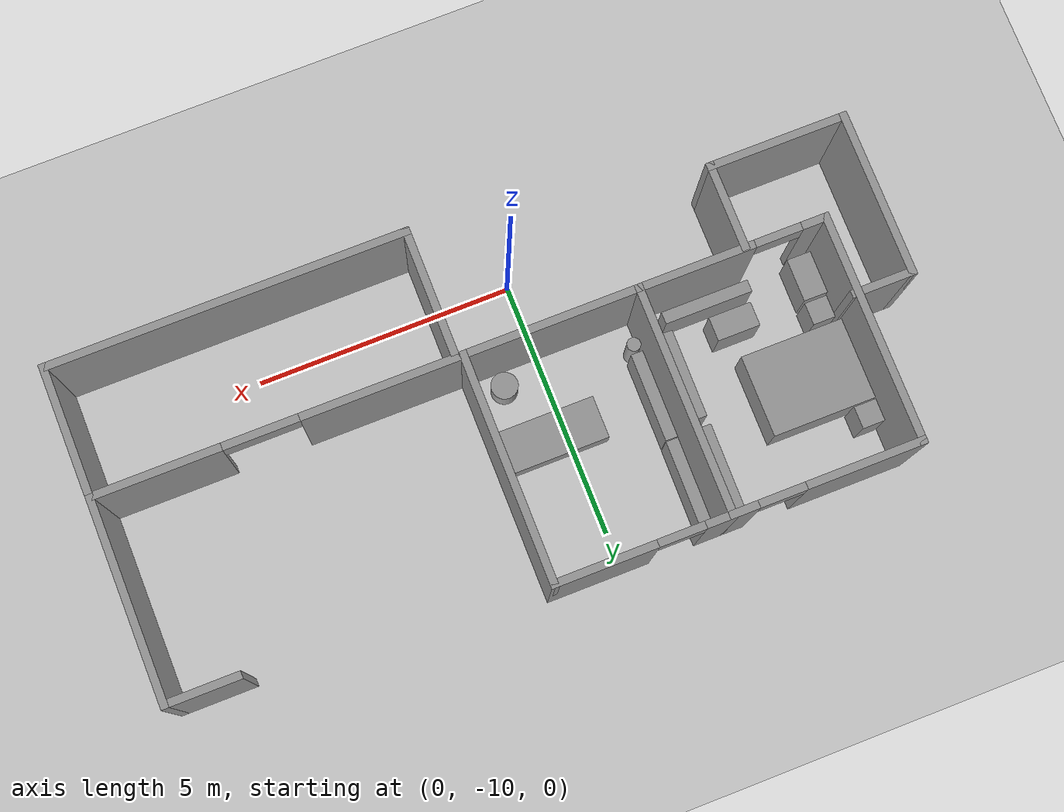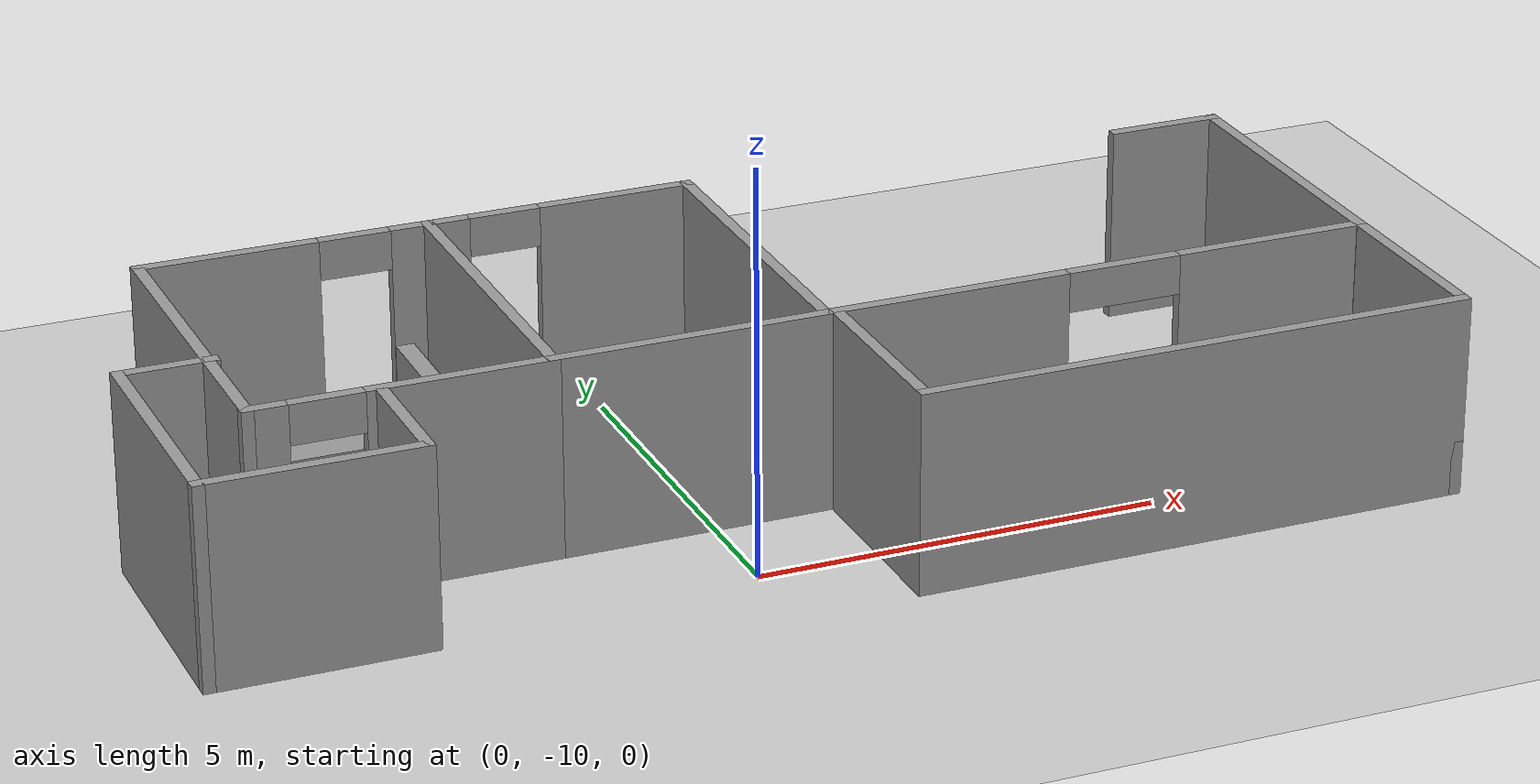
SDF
<sdf version="1.9">
 <world name="default">
  <model name="ground_plane">
   <static>true</static>
   <link name="link">
    <collision name="collision">
     <geometry><plane><normal>0 0 1</normal><size>100 100</size></plane></geometry>
     <surface><friction><ode><mu>100</mu><mu2>50</mu2></ode></friction></surface>
    </collision>
    <visual name="visual">
     <cast_shadows>false</cast_shadows>
     <geometry><plane><normal>0 0 1</normal><size>100 100</size></plane></geometry>
     <material>
      <script><uri>file://media/materials/scripts/gazebo.material</uri><name>Gazebo/Grey</name></script>
     </material>
    </visual>
   </link>
  </model>
  <model name="cma_quartos">
   <pose>-2.58169 -7.2645600000000004 0 0 0 0</pose>
   <link name="Wall_0">
    <collision name="Wall_0_Collision">
     <geometry><box><size>4.5 0.14999999999999999 2.5</size></box></geometry>
     <pose>0 0 1.25 0 0 0</pose>
    </collision>
    <visual name="Wall_0_Visual">
     <pose>0 0 1.25 0 0 0</pose>
     <geometry><box><size>4.5 0.14999999999999999 2.5</size></box></geometry>
     <material>
      <script><uri>file://media/materials/scripts/gazebo.material</uri><name>Gazebo/Grey</name></script>
      <ambient>1 1 1 1</ambient>
     </material>
    </visual>
    <pose>0.64500000000000002 0.81000000000000005 0 0 0 -1.5708</pose>
   </link>
   <link name="Wall_1">
    <pose>-1.155 -1.365 0 0 0 3.1415899999999999</pose>
    <visual name="Wall_1_Visual_0">
     <pose>-0.72250000000000003 0 1.25 0 0 0</pose>
     <geometry><box><size>2.3050000000000002 0.14999999999999999 2.5</size></box></geometry>
     <material>
      <script><uri>file://media/materials/scripts/gazebo.material</uri><name>Gazebo/Grey</name></script>
      <ambient>1 1 1 1</ambient>
     </material>
    </visual>
    <collision name="Wall_1_Collision_0">
     <geometry><box><size>2.3050000000000002 0.14999999999999999 2.5</size></box></geometry>
     <pose>-0.72250000000000003 0 1.25 0 0 0</pose>
    </collision>
    <visual name="Wall_1_Visual_1">
     <pose>1.6025 0 1.25 0 0 0</pose>
     <geometry><box><size>0.54500000000000004 0.14999999999999999 2.5</size></box></geometry>
     <material>
      <script><uri>file://media/materials/scripts/gazebo.material</uri><name>Gazebo/Grey</name></script>
      <ambient>1 1 1 1</ambient>
     </material>
    </visual>
    <collision name="Wall_1_Collision_1">
     <geometry><box><size>0.54500000000000004 0.14999999999999999 2.5</size></box></geometry>
     <pose>1.6025 0 1.25 0 0 0</pose>
    </collision>
    <visual name="Wall_1_Visual_2">
     <pose>0.88 0 2.25 0 0 0</pose>
     <geometry><box><size>0.90000000000000002 0.14999999999999999 0.5</size></box></geometry>
     <material>
      <script><uri>file://media/materials/scripts/gazebo.material</uri><name>Gazebo/Grey</name></script>
      <ambient>1 1 1 1</ambient>
     </material>
    </visual>
    <collision name="Wall_1_Collision_2">
     <geometry><box><size>0.90000000000000002 0.14999999999999999 0.5</size></box></geometry>
     <pose>0.88 0 2.25 0 0 0</pose>
    </collision>
   </link>
   <link name="Wall_10">
    <collision name="Wall_10_Collision">
     <geometry><box><size>1.75 0.14999999999999999 2.5</size></box></geometry>
     <pose>0 0 1.25 0 0 0</pose>
    </collision>
    <visual name="Wall_10_Visual">
     <pose>0 0 1.25 0 0 0</pose>
     <geometry><box><size>1.75 0.14999999999999999 2.5</size></box></geometry>
     <material>
      <script><uri>file://media/materials/scripts/gazebo.material</uri><name>Gazebo/Grey</name></script>
      <ambient>1 1 1 1</ambient>
     </material>
    </visual>
    <pose>-1.395 -2.1850000000000001 0 0 0 -1.5708</pose>
   </link>
   <link name="Wall_11">
    <collision name="Wall_11_Collision">
     <geometry><box><size>2.75 0.14999999999999999 2.5</size></box></geometry>
     <pose>0 0 1.25 0 0 0</pose>
    </collision>
    <visual name="Wall_11_Visual">
     <pose>0 0 1.25 0 0 0</pose>
     <geometry><box><size>2.75 0.14999999999999999 2.5</size></box></geometry>
     <material>
      <script><uri>file://media/materials/scripts/gazebo.material</uri><name>Gazebo/Grey</name></script>
      <ambient>1 1 1 1</ambient>
     </material>
    </visual>
    <pose>-2.6949999999999998 -2.9849999999999999 0 0 0 3.1415899999999999</pose>
   </link>
   <link name="Wall_12">
    <collision name="Wall_12_Collision">
     <geometry><box><size>3.25 0.14999999999999999 2.5</size></box></geometry>
     <pose>0 0 1.25 0 0 0</pose>
    </collision>
    <visual name="Wall_12_Visual">
     <pose>0 0 1.25 0 0 0</pose>
     <geometry><box><size>3.25 0.14999999999999999 2.5</size></box></geometry>
     <material>
      <script><uri>file://media/materials/scripts/gazebo.material</uri><name>Gazebo/Grey</name></script>
      <ambient>1 1 1 1</ambient>
     </material>
    </visual>
    <pose>-3.9950000000000001 -1.4350000000000001 0 0 0 1.5708</pose>
   </link>
   <link name="Wall_13">
    <collision name="Wall_13_Collision">
     <geometry><box><size>1.25 0.14999999999999999 2.5</size></box></geometry>
     <pose>0 0 1.25 0 0 0</pose>
    </collision>
    <visual name="Wall_13_Visual">
     <pose>0 0 1.25 0 0 0</pose>
     <geometry><box><size>1.25 0.14999999999999999 2.5</size></box></geometry>
     <material>
      <script><uri>file://media/materials/scripts/gazebo.material</uri><name>Gazebo/Grey</name></script>
      <ambient>1 1 1 1</ambient>
     </material>
    </visual>
    <pose>-3.4449999999999998 0.115 0 0 0 0</pose>
   </link>
   <link name="Wall_2">
    <collision name="Wall_2_Collision">
     <geometry><box><size>4.5 0.14999999999999999 2.5</size></box></geometry>
     <pose>0 0 1.25 0 0 0</pose>
    </collision>
    <visual name="Wall_2_Visual">
     <pose>0 0 1.25 0 0 0</pose>
     <geometry><box><size>4.5 0.14999999999999999 2.5</size></box></geometry>
     <material>
      <script><uri>file://media/materials/scripts/gazebo.material</uri><name>Gazebo/Grey</name></script>
      <ambient>1 1 1 1</ambient>
     </material>
    </visual>
    <pose>-2.9550000000000001 0.81000000000000005 0 0 0 1.5708</pose>
   </link>
   <link name="Wall_3">
    <pose>-1.155 2.9849999999999999 0 0 0 0</pose>
    <visual name="Wall_3_Visual_0">
     <pose>-0.73250000000000004 0 1.25 0 0 0</pose>
     <geometry><box><size>2.2850000000000001 0.14999999999999999 2.5</size></box></geometry>
     <material>
      <script><uri>file://media/materials/scripts/gazebo.material</uri><name>Gazebo/Grey</name></script>
      <ambient>1 1 1 1</ambient>
     </material>
    </visual>
    <collision name="Wall_3_Collision_0">
     <geometry><box><size>2.2850000000000001 0.14999999999999999 2.5</size></box></geometry>
     <pose>-0.73250000000000004 0 1.25 0 0 0</pose>
    </collision>
    <visual name="Wall_3_Visual_1">
     <pose>1.5925 0 1.25 0 0 0</pose>
     <geometry><box><size>0.56499999999999995 0.14999999999999999 2.5</size></box></geometry>
     <material>
      <script><uri>file://media/materials/scripts/gazebo.material</uri><name>Gazebo/Grey</name></script>
      <ambient>1 1 1 1</ambient>
     </material>
    </visual>
    <collision name="Wall_3_Collision_1">
     <geometry><box><size>0.56499999999999995 0.14999999999999999 2.5</size></box></geometry>
     <pose>1.5925 0 1.25 0 0 0</pose>
    </collision>
    <visual name="Wall_3_Visual_2">
     <pose>0.85999999999999999 0 2.25 0 0 0</pose>
     <geometry><box><size>0.90000000000000002 0.14999999999999999 0.5</size></box></geometry>
     <material>
      <script><uri>file://media/materials/scripts/gazebo.material</uri><name>Gazebo/Grey</name></script>
      <ambient>1 1 1 1</ambient>
     </material>
    </visual>
    <collision name="Wall_3_Collision_2">
     <geometry><box><size>0.90000000000000002 0.14999999999999999 0.5</size></box></geometry>
     <pose>0.85999999999999999 0 2.25 0 0 0</pose>
    </collision>
   </link>
   <link name="Wall_6">
    <pose>2.3199999999999998 2.9849999999999999 0 0 0 0</pose>
    <visual name="Wall_6_Visual_0">
     <pose>-1.4575 0 1.25 0 0 0</pose>
     <geometry><box><size>0.58499999999999996 0.14999999999999999 2.5</size></box></geometry>
     <material>
      <script><uri>file://media/materials/scripts/gazebo.material</uri><name>Gazebo/Grey</name></script>
      <ambient>1 1 1 1</ambient>
     </material>
    </visual>
    <collision name="Wall_6_Collision_0">
     <geometry><box><size>0.58499999999999996 0.14999999999999999 2.5</size></box></geometry>
     <pose>-1.4575 0 1.25 0 0 0</pose>
    </collision>
    <visual name="Wall_6_Visual_1">
     <pose>0.74250000000000005 0 1.25 0 0 0</pose>
     <geometry><box><size>2.0150000000000001 0.14999999999999999 2.5</size></box></geometry>
     <material>
      <script><uri>file://media/materials/scripts/gazebo.material</uri><name>Gazebo/Grey</name></script>
      <ambient>1 1 1 1</ambient>
     </material>
    </visual>
    <collision name="Wall_6_Collision_1">
     <geometry><box><size>2.0150000000000001 0.14999999999999999 2.5</size></box></geometry>
     <pose>0.74250000000000005 0 1.25 0 0 0</pose>
    </collision>
    <visual name="Wall_6_Visual_2">
     <pose>-0.71499999999999997 0 2.25 0 0 0</pose>
     <geometry><box><size>0.90000000000000002 0.14999999999999999 0.5</size></box></geometry>
     <material>
      <script><uri>file://media/materials/scripts/gazebo.material</uri><name>Gazebo/Grey</name></script>
      <ambient>1 1 1 1</ambient>
     </material>
    </visual>
    <collision name="Wall_6_Collision_2">
     <geometry><box><size>0.90000000000000002 0.14999999999999999 0.5</size></box></geometry>
     <pose>-0.71499999999999997 0 2.25 0 0 0</pose>
    </collision>
   </link>
   <link name="Wall_7">
    <collision name="Wall_7_Collision">
     <geometry><box><size>4.5 0.14999999999999999 2.5</size></box></geometry>
     <pose>0 0 1.25 0 0 0</pose>
    </collision>
    <visual name="Wall_7_Visual">
     <pose>0 0 1.25 0 0 0</pose>
     <geometry><box><size>4.5 0.14999999999999999 2.5</size></box></geometry>
     <material>
      <script><uri>file://media/materials/scripts/gazebo.material</uri><name>Gazebo/Grey</name></script>
      <ambient>1 1 1 1</ambient>
     </material>
    </visual>
    <pose>3.9950000000000001 0.81000000000000005 0 0 0 -1.5708</pose>
   </link>
   <link name="Wall_8">
    <collision name="Wall_8_Collision">
     <geometry><box><size>3.5 0.14999999999999999 2.5</size></box></geometry>
     <pose>0 0 1.25 0 0 0</pose>
    </collision>
    <visual name="Wall_8_Visual">
     <pose>0 0 1.25 0 0 0</pose>
     <geometry><box><size>3.5 0.14999999999999999 2.5</size></box></geometry>
     <material>
      <script><uri>file://media/materials/scripts/gazebo.material</uri><name>Gazebo/Grey</name></script>
      <ambient>1 1 1 1</ambient>
     </material>
    </visual>
    <pose>2.3199999999999998 -1.365 0 0 0 3.1415899999999999</pose>
   </link>
   <static>true</static>
  </model>
  <model name="cma_parede_L">
   <pose>4.97628 -6.6999199999999997 0 0 0 0</pose>
   <link name="Wall_0">
    <pose>0 -1.925 0 0 0 0</pose>
    <visual name="Wall_0_Visual_0">
     <pose>-1.9850000000000001 0 1.25 0 0 0</pose>
     <geometry><box><size>3.0299999999999998 0.14999999999999999 2.5</size></box></geometry>
     <material>
      <script><uri>file://media/materials/scripts/gazebo.material</uri><name>Gazebo/Grey</name></script>
      <ambient>1 1 1 1</ambient>
     </material>
    </visual>
    <collision name="Wall_0_Collision_0">
     <geometry><box><size>3.0299999999999998 0.14999999999999999 2.5</size></box></geometry>
     <pose>-1.9850000000000001 0 1.25 0 0 0</pose>
    </collision>
    <visual name="Wall_0_Visual_1">
     <pose>2.2400000000000002 0 1.25 0 0 0</pose>
     <geometry><box><size>2.52 0.14999999999999999 2.5</size></box></geometry>
     <material>
      <script><uri>file://media/materials/scripts/gazebo.material</uri><name>Gazebo/Grey</name></script>
      <ambient>1 1 1 1</ambient>
     </material>
    </visual>
    <collision name="Wall_0_Collision_1">
     <geometry><box><size>2.52 0.14999999999999999 2.5</size></box></geometry>
     <pose>2.2400000000000002 0 1.25 0 0 0</pose>
    </collision>
    <visual name="Wall_0_Visual_2">
     <pose>0.255 0 2.25 0 0 0</pose>
     <geometry><box><size>1.45 0.14999999999999999 0.5</size></box></geometry>
     <material>
      <script><uri>file://media/materials/scripts/gazebo.material</uri><name>Gazebo/Grey</name></script>
      <ambient>1 1 1 1</ambient>
     </material>
    </visual>
    <collision name="Wall_0_Collision_2">
     <geometry><box><size>1.45 0.14999999999999999 0.5</size></box></geometry>
     <pose>0.255 0 2.25 0 0 0</pose>
    </collision>
   </link>
   <link name="Wall_1">
    <collision name="Wall_1_Collision">
     <geometry><box><size>4 0.14999999999999999 2.5</size></box></geometry>
     <pose>0 0 1.25 0 0 0</pose>
    </collision>
    <visual name="Wall_1_Visual">
     <pose>0 0 1.25 0 0 0</pose>
     <geometry><box><size>4 0.14999999999999999 2.5</size></box></geometry>
     <material>
      <script><uri>file://media/materials/scripts/gazebo.material</uri><name>Gazebo/Grey</name></script>
      <ambient>1 1 1 1</ambient>
     </material>
    </visual>
    <pose>3.4249999999999998 0 0 0 0 1.5708</pose>
   </link>
   <link name="Wall_2">
    <collision name="Wall_2_Collision">
     <geometry><box><size>1.5 0.14999999999999999 2.5</size></box></geometry>
     <pose>0 0 1.25 0 0 0</pose>
    </collision>
    <visual name="Wall_2_Visual">
     <pose>0 0 1.25 0 0 0</pose>
     <geometry><box><size>1.5 0.14999999999999999 2.5</size></box></geometry>
     <material>
      <script><uri>file://media/materials/scripts/gazebo.material</uri><name>Gazebo/Grey</name></script>
      <ambient>1 1 1 1</ambient>
     </material>
    </visual>
    <pose>2.75 1.925 0 0 0 3.1415899999999999</pose>
   </link>
   <static>true</static>
  </model>
  <model name="cma_U">
   <pose>4.9789500000000002 -9.92408 0 0 0 0</pose>
   <link name="Wall_16">
    <collision name="Wall_16_Collision">
     <geometry><box><size>2.5 0.14999999999999999 2.5</size></box></geometry>
     <pose>0 0 1.25 0 0 0</pose>
    </collision>
    <visual name="Wall_16_Visual">
     <pose>0 0 1.25 0 0 0</pose>
     <geometry><box><size>2.5 0.14999999999999999 2.5</size></box></geometry>
     <material>
      <script><uri>file://media/materials/scripts/gazebo.material</uri><name>Gazebo/Grey</name></script>
      <ambient>1 1 1 1</ambient>
     </material>
    </visual>
    <pose>-3.4249999999999998 0 0 0 0 -1.5708</pose>
   </link>
   <link name="Wall_17">
    <collision name="Wall_17_Collision">
     <geometry><box><size>7 0.14999999999999999 2.5</size></box></geometry>
     <pose>0 0 1.25 0 0 0</pose>
    </collision>
    <visual name="Wall_17_Visual">
     <pose>0 0 1.25 0 0 0</pose>
     <geometry><box><size>7 0.14999999999999999 2.5</size></box></geometry>
     <material>
      <script><uri>file://media/materials/scripts/gazebo.material</uri><name>Gazebo/Grey</name></script>
      <ambient>1 1 1 1</ambient>
     </material>
    </visual>
    <pose>0 -1.175 0 0 0 0</pose>
   </link>
   <link name="Wall_18">
    <collision name="Wall_18_Collision">
     <geometry><box><size>2.5 0.14999999999999999 2.5</size></box></geometry>
     <pose>0 0 1.25 0 0 0</pose>
    </collision>
    <visual name="Wall_18_Visual">
     <pose>0 0 1.25 0 0 0</pose>
     <geometry><box><size>2.5 0.14999999999999999 2.5</size></box></geometry>
     <material>
      <script><uri>file://media/materials/scripts/gazebo.material</uri><name>Gazebo/Grey</name></script>
      <ambient>1 1 1 1</ambient>
     </material>
    </visual>
    <pose>3.4249999999999998 0 0 0 0 1.5708</pose>
   </link>
   <static>true</static>
  </model>
  <model name="cma_cama_c">
   <link name="link_0">
    <pose>5.0000000000000004e-06 -3.9999999999999998e-06 0 0 0 0</pose>
    <inertial>
     <mass>3.1835800000000001</mass>
     <inertia>
      <ixx>0.93486199999999997</ixx>
      <ixy>0</ixy>
      <ixz>0</ixz>
      <iyy>1.3306899999999999</iyy>
      <iyz>0</iyz>
      <izz>1.7349600000000001</izz>
     </inertia>
    </inertial>
    <visual name="visual">
     <geometry><box><size>2.0039400000000001 1.58866 1</size></box></geometry>
     <material>
      <lighting>true</lighting>
      <script><uri>file://media/materials/scripts/gazebo.material</uri><name>Gazebo/Grey</name></script>
      <ambient>0.300000012 0.300000012 0.300000012 1</ambient>
      <diffuse>0.699999988 0.699999988 0.699999988 1</diffuse>
      <specular>0.00999999978 0.00999999978 0.00999999978 1</specular>
      <emissive>0 0 0 1</emissive>
     </material>
    </visual>
    <collision name="collision">
     <geometry><box><size>2.0039400000000001 1.58866 1</size></box></geometry>
     <surface>
      <friction>
       <ode><mu>1</mu><mu2>1</mu2><fdir1>0 0 0</fdir1><slip1>0</slip1><slip2>0</slip2></ode>
       <torsional>
        <coefficient>1</coefficient>
        <patch_radius>0</patch_radius>
        <surface_radius>0</surface_radius>
        <use_patch_radius>true</use_patch_radius>
        <ode><slip>0</slip></ode>
       </torsional>
      </friction>
      <bounce><restitution_coefficient>0</restitution_coefficient><threshold>1000000</threshold></bounce>
      <contact>
       <collide_without_contact>false</collide_without_contact>
       <collide_without_contact_bitmask>1</collide_without_contact_bitmask>
       <collide_bitmask>1</collide_bitmask>
       <ode>
        <soft_cfm>0</soft_cfm>
        <soft_erp>0.20000000000000001</soft_erp>
        <kp>10000000000000</kp>
        <kd>1</kd>
        <max_vel>0.01</max_vel>
        <min_depth>0</min_depth>
       </ode>
       <bullet>
        <split_impulse>true</split_impulse>
        <split_impulse_penetration_threshold>-0.01</split_impulse_penetration_threshold>
        <soft_cfm>0</soft_cfm>
        <soft_erp>0.20000000000000001</soft_erp>
        <kp>10000000000000</kp>
        <kd>1</kd>
       </bullet>
      </contact>
     </surface>
    </collision>
   </link>
   <static>false</static>
   <pose>-4.43933 -6.2481600000000004 0.5 0 0 0</pose>
  </model>
  <model name="cma_gaveteiro_pequeno_1">
   <link name="link_0">
    <pose>0.25617400000000001 1.2505500000000001 0.5 0 0 0</pose>
    <inertial>
     <mass>0.18718599999999999</mass>
     <inertia>
      <ixx>0.018509999999999999</ixx>
      <ixy>0</ixy>
      <ixz>0</ixz>
      <iyy>0.018527600000000002</iyy>
      <iyz>0</iyz>
      <izz>0.00583981</izz>
     </inertia>
    </inertial>
    <visual name="visual">
     <geometry><box><size>0.43331700000000001 0.432002 1</size></box></geometry>
     <material>
      <lighting>true</lighting>
      <script><uri>file://media/materials/scripts/gazebo.material</uri><name>Gazebo/Grey</name></script>
      <ambient>0.300000012 0.300000012 0.300000012 1</ambient>
      <diffuse>0.699999988 0.699999988 0.699999988 1</diffuse>
      <specular>0.00999999978 0.00999999978 0.00999999978 1</specular>
      <emissive>0 0 0 1</emissive>
     </material>
    </visual>
    <collision name="collision">
     <geometry><box><size>0.43331700000000001 0.432002 1</size></box></geometry>
     <surface>
      <friction>
       <ode><mu>1</mu><mu2>1</mu2><fdir1>0 0 0</fdir1><slip1>0</slip1><slip2>0</slip2></ode>
       <torsional>
        <coefficient>1</coefficient>
        <patch_radius>0</patch_radius>
        <surface_radius>0</surface_radius>
        <use_patch_radius>true</use_patch_radius>
        <ode><slip>0</slip></ode>
       </torsional>
      </friction>
      <bounce><restitution_coefficient>0</restitution_coefficient><threshold>1000000</threshold></bounce>
      <contact>
       <collide_without_contact>false</collide_without_contact>
       <collide_without_contact_bitmask>1</collide_without_contact_bitmask>
       <collide_bitmask>1</collide_bitmask>
       <ode>
        <soft_cfm>0</soft_cfm>
        <soft_erp>0.20000000000000001</soft_erp>
        <kp>10000000000000</kp>
        <kd>1</kd>
        <max_vel>0.01</max_vel>
        <min_depth>0</min_depth>
       </ode>
       <bullet>
        <split_impulse>true</split_impulse>
        <split_impulse_penetration_threshold>-0.01</split_impulse_penetration_threshold>
        <soft_cfm>0</soft_cfm>
        <soft_erp>0.20000000000000001</soft_erp>
        <kp>10000000000000</kp>
        <kd>1</kd>
       </bullet>
      </contact>
     </surface>
    </collision>
   </link>
   <static>false</static>
   <pose>-5.4747500000000002 -6.4632500000000004 -6.9999999999999999e-06 6.999999999999999e-06 4.0389678347315804e-28 -9.9999999999999995e-07</pose>
  </model>
  <model name="cma_armario_s_0">
   <link name="link_1">
    <pose>-1.9999999999999999e-06 -3.0000000000000001e-06 0 0 0 0</pose>
    <inertial>
     <mass>0.39015899999999998</mass>
     <inertia>
      <ixx>0.039647000000000002</ixx>
      <ixy>0</ixy>
      <ixz>0</ixz>
      <iyy>0.055070800000000003</iyy>
      <iyz>0</iyz>
      <izz>0.029691200000000001</izz>
     </inertia>
    </inertial>
    <visual name="visual">
     <geometry><box><size>0.83294199999999996 0.46839700000000001 1</size></box></geometry>
     <material>
      <lighting>true</lighting>
      <script><uri>file://media/materials/scripts/gazebo.material</uri><name>Gazebo/Grey</name></script>
      <ambient>0.300000012 0.300000012 0.300000012 1</ambient>
      <diffuse>0.699999988 0.699999988 0.699999988 1</diffuse>
      <specular>0.00999999978 0.00999999978 0.00999999978 1</specular>
      <emissive>0 0 0 1</emissive>
     </material>
    </visual>
    <collision name="collision">
     <geometry><box><size>0.83294199999999996 0.46839700000000001 1</size></box></geometry>
     <surface>
      <friction>
       <ode><mu>1</mu><mu2>1</mu2><fdir1>0 0 0</fdir1><slip1>0</slip1><slip2>0</slip2></ode>
       <torsional>
        <coefficient>1</coefficient>
        <patch_radius>0</patch_radius>
        <surface_radius>0</surface_radius>
        <use_patch_radius>true</use_patch_radius>
        <ode><slip>0</slip></ode>
       </torsional>
      </friction>
      <bounce><restitution_coefficient>0</restitution_coefficient><threshold>1000000</threshold></bounce>
      <contact>
       <collide_without_contact>false</collide_without_contact>
       <collide_without_contact_bitmask>1</collide_without_contact_bitmask>
       <collide_bitmask>1</collide_bitmask>
       <ode>
        <soft_cfm>0</soft_cfm>
        <soft_erp>0.20000000000000001</soft_erp>
        <kp>10000000000000</kp>
        <kd>1</kd>
        <max_vel>0.01</max_vel>
        <min_depth>0</min_depth>
       </ode>
       <bullet>
        <split_impulse>true</split_impulse>
        <split_impulse_penetration_threshold>-0.01</split_impulse_penetration_threshold>
        <soft_cfm>0</soft_cfm>
        <soft_erp>0.20000000000000001</soft_erp>
        <kp>10000000000000</kp>
        <kd>1</kd>
       </bullet>
      </contact>
     </surface>
    </collision>
   </link>
   <static>false</static>
   <pose>-5.1683599999999998 -8.0155499999999993 0.49999900000000003 1.9999999999999999e-06 4.0000000000000007e-06 -1.57518</pose>
  </model>
  <model name="cma_gaveteiro_pequeno_2">
   <link name="link_0">
    <pose>0.25617400000000001 1.2505500000000001 0.5 0 0 0</pose>
    <inertial>
     <mass>0.18718599999999999</mass>
     <inertia>
      <ixx>0.018509999999999999</ixx>
      <ixy>0</ixy>
      <ixz>0</ixz>
      <iyy>0.018527600000000002</iyy>
      <iyz>0</iyz>
      <izz>0.00583981</izz>
     </inertia>
    </inertial>
    <visual name="visual">
     <geometry><box><size>0.43331700000000001 0.432002 1</size></box></geometry>
     <material>
      <lighting>true</lighting>
      <script><uri>file://media/materials/scripts/gazebo.material</uri><name>Gazebo/Grey</name></script>
      <ambient>0.300000012 0.300000012 0.300000012 1</ambient>
      <diffuse>0.699999988 0.699999988 0.699999988 1</diffuse>
      <specular>0.00999999978 0.00999999978 0.00999999978 1</specular>
      <emissive>0 0 0 1</emissive>
     </material>
    </visual>
    <collision name="collision">
     <geometry><box><size>0.43331700000000001 0.432002 1</size></box></geometry>
     <surface>
      <friction>
       <ode><mu>1</mu><mu2>1</mu2><fdir1>0 0 0</fdir1><slip1>0</slip1><slip2>0</slip2></ode>
       <torsional>
        <coefficient>1</coefficient>
        <patch_radius>0</patch_radius>
        <surface_radius>0</surface_radius>
        <use_patch_radius>true</use_patch_radius>
        <ode><slip>0</slip></ode>
       </torsional>
      </friction>
      <bounce><restitution_coefficient>0</restitution_coefficient><threshold>1000000</threshold></bounce>
      <contact>
       <collide_without_contact>false</collide_without_contact>
       <collide_without_contact_bitmask>1</collide_without_contact_bitmask>
       <collide_bitmask>1</collide_bitmask>
       <ode>
        <soft_cfm>0</soft_cfm>
        <soft_erp>0.20000000000000001</soft_erp>
        <kp>10000000000000</kp>
        <kd>1</kd>
        <max_vel>0.01</max_vel>
        <min_depth>0</min_depth>
       </ode>
       <bullet>
        <split_impulse>true</split_impulse>
        <split_impulse_penetration_threshold>-0.01</split_impulse_penetration_threshold>
        <soft_cfm>0</soft_cfm>
        <soft_erp>0.20000000000000001</soft_erp>
        <kp>10000000000000</kp>
        <kd>1</kd>
       </bullet>
      </contact>
     </surface>
    </collision>
   </link>
   <static>false</static>
   <pose>-5.3915899999999999 -8.5855300000000003 -6.9999999999999999e-06 6.999999999999999e-06 4.0389678347315804e-28 -9.9999999999999995e-07</pose>
  </model>
  <model name="cma_armario_s_1">
   <link name="link_1">
    <pose>-1.9999999999999999e-06 -3.0000000000000001e-06 0 0 0 0</pose>
    <inertial>
     <mass>0.39015899999999998</mass>
     <inertia>
      <ixx>0.039647000000000002</ixx>
      <ixy>0</ixy>
      <ixz>0</ixz>
      <iyy>0.055070800000000003</iyy>
      <iyz>0</iyz>
      <izz>0.029691200000000001</izz>
     </inertia>
    </inertial>
    <visual name="visual">
     <geometry><box><size>0.83294199999999996 0.46839700000000001 1</size></box></geometry>
     <material>
      <lighting>true</lighting>
      <script><uri>file://media/materials/scripts/gazebo.material</uri><name>Gazebo/Grey</name></script>
      <ambient>0.300000012 0.300000012 0.300000012 1</ambient>
      <diffuse>0.699999988 0.699999988 0.699999988 1</diffuse>
      <specular>0.00999999978 0.00999999978 0.00999999978 1</specular>
      <emissive>0 0 0 1</emissive>
     </material>
    </visual>
    <collision name="collision">
     <geometry><box><size>0.83294199999999996 0.46839700000000001 1</size></box></geometry>
     <surface>
      <friction>
       <ode><mu>1</mu><mu2>1</mu2><fdir1>0 0 0</fdir1><slip1>0</slip1><slip2>0</slip2></ode>
       <torsional>
        <coefficient>1</coefficient>
        <patch_radius>0</patch_radius>
        <surface_radius>0</surface_radius>
        <use_patch_radius>true</use_patch_radius>
        <ode><slip>0</slip></ode>
       </torsional>
      </friction>
      <bounce><restitution_coefficient>0</restitution_coefficient><threshold>1000000</threshold></bounce>
      <contact>
       <collide_without_contact>false</collide_without_contact>
       <collide_without_contact_bitmask>1</collide_without_contact_bitmask>
       <collide_bitmask>1</collide_bitmask>
       <ode>
        <soft_cfm>0</soft_cfm>
        <soft_erp>0.20000000000000001</soft_erp>
        <kp>10000000000000</kp>
        <kd>1</kd>
        <max_vel>0.01</max_vel>
        <min_depth>0</min_depth>
       </ode>
       <bullet>
        <split_impulse>true</split_impulse>
        <split_impulse_penetration_threshold>-0.01</split_impulse_penetration_threshold>
        <soft_cfm>0</soft_cfm>
        <soft_erp>0.20000000000000001</soft_erp>
        <kp>10000000000000</kp>
        <kd>1</kd>
       </bullet>
      </contact>
     </surface>
    </collision>
   </link>
   <static>false</static>
   <pose>-3.57952 -7.7097199999999999 0.49999900000000003 1.9999999999999999e-06 4.0000000000000007e-06 -9.9999999999999974e-07</pose>
  </model>
  <model name="cma_armario_1">
   <link name="link_0">
    <pose>1.3215699999999999 0.88517800000000002 0.5 0 0 0</pose>
    <inertial>
     <mass>0.40237600000000001</mass>
     <inertia>
      <ixx>0.0353686</ixx>
      <ixy>0</ixy>
      <ixz>0</ixz>
      <iyy>0.13261600000000001</iyy>
      <iyz>0</iyz>
      <izz>0.100922</izz>
     </inertia>
    </inertial>
    <visual name="visual">
     <geometry><box><size>1.7187699999999999 0.234069 1</size></box></geometry>
     <material>
      <lighting>true</lighting>
      <script><uri>file://media/materials/scripts/gazebo.material</uri><name>Gazebo/Grey</name></script>
      <ambient>0.300000012 0.300000012 0.300000012 1</ambient>
      <diffuse>0.699999988 0.699999988 0.699999988 1</diffuse>
      <specular>0.00999999978 0.00999999978 0.00999999978 1</specular>
      <emissive>0 0 0 1</emissive>
     </material>
    </visual>
    <collision name="collision">
     <geometry><box><size>1.7187699999999999 0.234069 1</size></box></geometry>
     <surface>
      <friction>
       <ode><mu>1</mu><mu2>1</mu2><fdir1>0 0 0</fdir1><slip1>0</slip1><slip2>0</slip2></ode>
       <torsional>
        <coefficient>1</coefficient>
        <patch_radius>0</patch_radius>
        <surface_radius>0</surface_radius>
        <use_patch_radius>true</use_patch_radius>
        <ode><slip>0</slip></ode>
       </torsional>
      </friction>
      <bounce><restitution_coefficient>0</restitution_coefficient><threshold>1000000</threshold></bounce>
      <contact>
       <collide_without_contact>false</collide_without_contact>
       <collide_without_contact_bitmask>1</collide_without_contact_bitmask>
       <collide_bitmask>1</collide_bitmask>
       <ode>
        <soft_cfm>0</soft_cfm>
        <soft_erp>0.20000000000000001</soft_erp>
        <kp>10000000000000</kp>
        <kd>1</kd>
        <max_vel>0.01</max_vel>
        <min_depth>0</min_depth>
       </ode>
       <bullet>
        <split_impulse>true</split_impulse>
        <split_impulse_penetration_threshold>-0.01</split_impulse_penetration_threshold>
        <soft_cfm>0</soft_cfm>
        <soft_erp>0.20000000000000001</soft_erp>
        <kp>10000000000000</kp>
        <kd>1</kd>
       </bullet>
      </contact>
     </surface>
    </collision>
   </link>
   <static>false</static>
   <pose>-4.5666099999999998 -9.1232900000000008 0 0 0 -7.7999999999999985e-05</pose>
  </model>
  <model name="cma_armario_2">
   <link name="link_0">
    <pose>1.3215699999999999 0.88517800000000002 0.5 0 0 0</pose>
    <inertial>
     <mass>0.40237600000000001</mass>
     <inertia>
      <ixx>0.0353686</ixx>
      <ixy>0</ixy>
      <ixz>0</ixz>
      <iyy>0.13261600000000001</iyy>
      <iyz>0</iyz>
      <izz>0.100922</izz>
     </inertia>
    </inertial>
    <visual name="visual">
     <geometry><box><size>1.7187699999999999 0.234069 1</size></box></geometry>
     <material>
      <lighting>true</lighting>
      <script><uri>file://media/materials/scripts/gazebo.material</uri><name>Gazebo/Grey</name></script>
      <ambient>0.300000012 0.300000012 0.300000012 1</ambient>
      <diffuse>0.699999988 0.699999988 0.699999988 1</diffuse>
      <specular>0.00999999978 0.00999999978 0.00999999978 1</specular>
      <emissive>0 0 0 1</emissive>
     </material>
    </visual>
    <collision name="collision">
     <geometry><box><size>1.7187699999999999 0.234069 1</size></box></geometry>
     <surface>
      <friction>
       <ode><mu>1</mu><mu2>1</mu2><fdir1>0 0 0</fdir1><slip1>0</slip1><slip2>0</slip2></ode>
       <torsional>
        <coefficient>1</coefficient>
        <patch_radius>0</patch_radius>
        <surface_radius>0</surface_radius>
        <use_patch_radius>true</use_patch_radius>
        <ode><slip>0</slip></ode>
       </torsional>
      </friction>
      <bounce><restitution_coefficient>0</restitution_coefficient><threshold>1000000</threshold></bounce>
      <contact>
       <collide_without_contact>false</collide_without_contact>
       <collide_without_contact_bitmask>1</collide_without_contact_bitmask>
       <collide_bitmask>1</collide_bitmask>
       <ode>
        <soft_cfm>0</soft_cfm>
        <soft_erp>0.20000000000000001</soft_erp>
        <kp>10000000000000</kp>
        <kd>1</kd>
        <max_vel>0.01</max_vel>
        <min_depth>0</min_depth>
       </ode>
       <bullet>
        <split_impulse>true</split_impulse>
        <split_impulse_penetration_threshold>-0.01</split_impulse_penetration_threshold>
        <soft_cfm>0</soft_cfm>
        <soft_erp>0.20000000000000001</soft_erp>
        <kp>10000000000000</kp>
        <kd>1</kd>
       </bullet>
      </contact>
     </surface>
    </collision>
   </link>
   <static>false</static>
   <pose>-1.44231 -6.5630499999999996 0 0 0 1.5631299999999997</pose>
  </model>
  <model name="cma_armario_2_clone">
   <link name="link_0">
    <pose>1.3215699999999999 0.88517800000000002 0.5 0 0 0</pose>
    <inertial>
     <mass>0.40237600000000001</mass>
     <inertia>
      <ixx>0.0353686</ixx>
      <ixy>0</ixy>
      <ixz>0</ixz>
      <iyy>0.13261600000000001</iyy>
      <iyz>0</iyz>
      <izz>0.100922</izz>
     </inertia>
    </inertial>
    <visual name="visual">
     <geometry><box><size>1.7187699999999999 0.234069 1</size></box></geometry>
     <material>
      <lighting>true</lighting>
      <script><uri>file://media/materials/scripts/gazebo.material</uri><name>Gazebo/Grey</name></script>
      <ambient>0.300000012 0.300000012 0.300000012 1</ambient>
      <diffuse>0.699999988 0.699999988 0.699999988 1</diffuse>
      <specular>0.00999999978 0.00999999978 0.00999999978 1</specular>
      <emissive>0 0 0 1</emissive>
     </material>
    </visual>
    <collision name="collision">
     <geometry><box><size>1.7187699999999999 0.234069 1</size></box></geometry>
     <surface>
      <friction>
       <ode><mu>1</mu><mu2>1</mu2><fdir1>0 0 0</fdir1><slip1>0</slip1><slip2>0</slip2></ode>
       <torsional>
        <coefficient>1</coefficient>
        <patch_radius>0</patch_radius>
        <surface_radius>0</surface_radius>
        <use_patch_radius>true</use_patch_radius>
        <ode><slip>0</slip></ode>
       </torsional>
      </friction>
      <bounce><restitution_coefficient>0</restitution_coefficient><threshold>1000000</threshold></bounce>
      <contact>
       <collide_without_contact>false</collide_without_contact>
       <collide_without_contact_bitmask>1</collide_without_contact_bitmask>
       <collide_bitmask>1</collide_bitmask>
       <ode>
        <soft_cfm>0</soft_cfm>
        <soft_erp>0.20000000000000001</soft_erp>
        <kp>10000000000000</kp>
        <kd>1</kd>
        <max_vel>0.01</max_vel>
        <min_depth>0</min_depth>
       </ode>
       <bullet>
        <split_impulse>true</split_impulse>
        <split_impulse_penetration_threshold>-0.01</split_impulse_penetration_threshold>
        <soft_cfm>0</soft_cfm>
        <soft_erp>0.20000000000000001</soft_erp>
        <kp>10000000000000</kp>
        <kd>1</kd>
       </bullet>
      </contact>
     </surface>
    </collision>
   </link>
   <static>false</static>
   <pose>-1.44885 -8.4459599999999995 0 0 0 1.5631299999999997</pose>
  </model>
  <model name="cma_cama_s_0">
   <link name="link_0">
    <pose>0 1.9999999999999999e-06 0 0 0 0</pose>
    <inertial>
     <mass>1.44546</mass>
     <inertia>
      <ixx>0.173816</ixx>
      <ixy>0</ixy>
      <ixz>0</ixz>
      <iyy>0.57522300000000004</iyy>
      <iyz>0</iyz>
      <izz>0.56745999999999996</izz>
     </inertia>
    </inertial>
    <visual name="visual">
     <geometry><box><size>2.0053999999999998 0.83022700000000005 0.86816300000000002</size></box></geometry>
     <material>
      <lighting>true</lighting>
      <script><uri>file://media/materials/scripts/gazebo.material</uri><name>Gazebo/Grey</name></script>
      <ambient>0.300000012 0.300000012 0.300000012 1</ambient>
      <diffuse>0.699999988 0.699999988 0.699999988 1</diffuse>
      <specular>0.00999999978 0.00999999978 0.00999999978 1</specular>
      <emissive>0 0 0 1</emissive>
     </material>
    </visual>
    <collision name="collision">
     <geometry><box><size>2.0053999999999998 0.83022700000000005 0.86816300000000002</size></box></geometry>
     <surface>
      <friction>
       <ode><mu>1</mu><mu2>1</mu2><fdir1>0 0 0</fdir1><slip1>0</slip1><slip2>0</slip2></ode>
       <torsional>
        <coefficient>1</coefficient>
        <patch_radius>0</patch_radius>
        <surface_radius>0</surface_radius>
        <use_patch_radius>true</use_patch_radius>
        <ode><slip>0</slip></ode>
       </torsional>
      </friction>
      <bounce><restitution_coefficient>0</restitution_coefficient><threshold>1000000</threshold></bounce>
      <contact>
       <collide_without_contact>false</collide_without_contact>
       <collide_without_contact_bitmask>1</collide_without_contact_bitmask>
       <collide_bitmask>1</collide_bitmask>
       <ode>
        <soft_cfm>0</soft_cfm>
        <soft_erp>0.20000000000000001</soft_erp>
        <kp>10000000000000</kp>
        <kd>1</kd>
        <max_vel>0.01</max_vel>
        <min_depth>0</min_depth>
       </ode>
       <bullet>
        <split_impulse>true</split_impulse>
        <split_impulse_penetration_threshold>-0.01</split_impulse_penetration_threshold>
        <soft_cfm>0</soft_cfm>
        <soft_erp>0.20000000000000001</soft_erp>
        <kp>10000000000000</kp>
        <kd>1</kd>
       </bullet>
      </contact>
     </surface>
    </collision>
   </link>
   <static>false</static>
   <pose>0.31357299999999999 -7.0307700000000004 0 0 0 0</pose>
  </model>
  <model name="cma_armario_4">
   <link name="link_0">
    <pose>1.3215699999999999 0.88517800000000002 0.5 0 0 0</pose>
    <inertial>
     <mass>0.40237600000000001</mass>
     <inertia>
      <ixx>0.0353686</ixx>
      <ixy>0</ixy>
      <ixz>0</ixz>
      <iyy>0.13261600000000001</iyy>
      <iyz>0</iyz>
      <izz>0.100922</izz>
     </inertia>
    </inertial>
    <visual name="visual">
     <geometry><box><size>1.7187699999999999 0.234069 1</size></box></geometry>
     <material>
      <lighting>true</lighting>
      <script><uri>file://media/materials/scripts/gazebo.material</uri><name>Gazebo/Grey</name></script>
      <ambient>0.300000012 0.300000012 0.300000012 1</ambient>
      <diffuse>0.699999988 0.699999988 0.699999988 1</diffuse>
      <specular>0.00999999978 0.00999999978 0.00999999978 1</specular>
      <emissive>0 0 0 1</emissive>
     </material>
    </visual>
    <collision name="collision">
     <geometry><box><size>1.7187699999999999 0.234069 1</size></box></geometry>
     <surface>
      <friction>
       <ode><mu>1</mu><mu2>1</mu2><fdir1>0 0 0</fdir1><slip1>0</slip1><slip2>0</slip2></ode>
       <torsional>
        <coefficient>1</coefficient>
        <patch_radius>0</patch_radius>
        <surface_radius>0</surface_radius>
        <use_patch_radius>true</use_patch_radius>
        <ode><slip>0</slip></ode>
       </torsional>
      </friction>
      <bounce><restitution_coefficient>0</restitution_coefficient><threshold>1000000</threshold></bounce>
      <contact>
       <collide_without_contact>false</collide_without_contact>
       <collide_without_contact_bitmask>1</collide_without_contact_bitmask>
       <collide_bitmask>1</collide_bitmask>
       <ode>
        <soft_cfm>0</soft_cfm>
        <soft_erp>0.20000000000000001</soft_erp>
        <kp>10000000000000</kp>
        <kd>1</kd>
        <max_vel>0.01</max_vel>
        <min_depth>0</min_depth>
       </ode>
       <bullet>
        <split_impulse>true</split_impulse>
        <split_impulse_penetration_threshold>-0.01</split_impulse_penetration_threshold>
        <soft_cfm>0</soft_cfm>
        <soft_erp>0.20000000000000001</soft_erp>
        <kp>10000000000000</kp>
        <kd>1</kd>
       </bullet>
      </contact>
     </surface>
    </collision>
   </link>
   <static>false</static>
   <pose>-0.785053 -6.5468700000000002 0 0 0 1.5625100000000001</pose>
  </model>
  <model name="cma_armario_5">
   <link name="link_0">
    <pose>1.3215699999999999 0.88517800000000002 0.5 0 0 0</pose>
    <inertial>
     <mass>0.40237600000000001</mass>
     <inertia>
      <ixx>0.0353686</ixx>
      <ixy>0</ixy>
      <ixz>0</ixz>
      <iyy>0.13261600000000001</iyy>
      <iyz>0</iyz>
      <izz>0.100922</izz>
     </inertia>
    </inertial>
    <visual name="visual">
     <geometry><box><size>1.7187699999999999 0.234069 1</size></box></geometry>
     <material>
      <lighting>true</lighting>
      <script><uri>file://media/materials/scripts/gazebo.material</uri><name>Gazebo/Grey</name></script>
      <ambient>0.300000012 0.300000012 0.300000012 1</ambient>
      <diffuse>0.699999988 0.699999988 0.699999988 1</diffuse>
      <specular>0.00999999978 0.00999999978 0.00999999978 1</specular>
      <emissive>0 0 0 1</emissive>
     </material>
    </visual>
    <collision name="collision">
     <geometry><box><size>1.7187699999999999 0.234069 1</size></box></geometry>
     <surface>
      <friction>
       <ode><mu>1</mu><mu2>1</mu2><fdir1>0 0 0</fdir1><slip1>0</slip1><slip2>0</slip2></ode>
       <torsional>
        <coefficient>1</coefficient>
        <patch_radius>0</patch_radius>
        <surface_radius>0</surface_radius>
        <use_patch_radius>true</use_patch_radius>
        <ode><slip>0</slip></ode>
       </torsional>
      </friction>
      <bounce><restitution_coefficient>0</restitution_coefficient><threshold>1000000</threshold></bounce>
      <contact>
       <collide_without_contact>false</collide_without_contact>
       <collide_without_contact_bitmask>1</collide_without_contact_bitmask>
       <collide_bitmask>1</collide_bitmask>
       <ode>
        <soft_cfm>0</soft_cfm>
        <soft_erp>0.20000000000000001</soft_erp>
        <kp>10000000000000</kp>
        <kd>1</kd>
        <max_vel>0.01</max_vel>
        <min_depth>0</min_depth>
       </ode>
       <bullet>
        <split_impulse>true</split_impulse>
        <split_impulse_penetration_threshold>-0.01</split_impulse_penetration_threshold>
        <soft_cfm>0</soft_cfm>
        <soft_erp>0.20000000000000001</soft_erp>
        <kp>10000000000000</kp>
        <kd>1</kd>
       </bullet>
      </contact>
     </surface>
    </collision>
   </link>
   <static>false</static>
   <pose>-0.79357299999999997 -8.2780299999999993 0 0 0 1.56715</pose>
  </model>
  <model name="cma_lixo_1">
   <link name="link_1">
    <pose>0.88296200000000002 1.81586 0.5 0 0 0</pose>
    <inertial>
     <mass>0.068764400000000003</mass>
     <inertia>
      <ixx>0.00602588</ixx>
      <ixy>0</ixy>
      <ixz>0</ixz>
      <iyy>0.00602588</iyy>
      <iyz>0</iyz>
      <izz>0.00059106800000000004</izz>
     </inertia>
    </inertial>
    <visual name="visual">
     <geometry><cylinder><radius>0.13111200000000001</radius><length>1</length></cylinder></geometry>
     <material>
      <lighting>true</lighting>
      <script><uri>file://media/materials/scripts/gazebo.material</uri><name>Gazebo/Grey</name></script>
      <ambient>0.300000012 0.300000012 0.300000012 1</ambient>
      <diffuse>0.699999988 0.699999988 0.699999988 1</diffuse>
      <specular>0.00999999978 0.00999999978 0.00999999978 1</specular>
      <emissive>0 0 0 1</emissive>
     </material>
    </visual>
    <collision name="collision">
     <geometry><cylinder><radius>0.13111200000000001</radius><length>1</length></cylinder></geometry>
     <surface>
      <friction>
       <ode><mu>1</mu><mu2>1</mu2><fdir1>0 0 0</fdir1><slip1>0</slip1><slip2>0</slip2></ode>
       <torsional>
        <coefficient>1</coefficient>
        <patch_radius>0</patch_radius>
        <surface_radius>0</surface_radius>
        <use_patch_radius>true</use_patch_radius>
        <ode><slip>0</slip></ode>
       </torsional>
      </friction>
      <bounce><restitution_coefficient>0</restitution_coefficient><threshold>1000000</threshold></bounce>
      <contact>
       <collide_without_contact>false</collide_without_contact>
       <collide_without_contact_bitmask>1</collide_without_contact_bitmask>
       <collide_bitmask>1</collide_bitmask>
       <ode>
        <soft_cfm>0</soft_cfm>
        <soft_erp>0.20000000000000001</soft_erp>
        <kp>10000000000000</kp>
        <kd>1</kd>
        <max_vel>0.01</max_vel>
        <min_depth>0</min_depth>
       </ode>
       <bullet>
        <split_impulse>true</split_impulse>
        <split_impulse_penetration_threshold>-0.01</split_impulse_penetration_threshold>
        <soft_cfm>0</soft_cfm>
        <soft_erp>0.20000000000000001</soft_erp>
        <kp>10000000000000</kp>
        <kd>1</kd>
       </bullet>
      </contact>
     </surface>
    </collision>
   </link>
   <static>false</static>
   <pose>-2.5710299999999999 -9.7974999999999994 0 0 0 0</pose>
  </model>
  <model name="cma_cesto_0">
   <link name="link_1">
    <pose>-0.32965899999999998 -1.55494 0 0 0 0</pose>
    <inertial>
     <mass>0.267897</mass>
     <inertia>
      <ixx>0.026810199999999999</ixx>
      <ixy>0</ixy>
      <ixz>0</ixz>
      <iyy>0.026810199999999999</iyy>
      <iyz>0</iyz>
      <izz>0.0089711099999999992</izz>
     </inertia>
    </inertial>
    <visual name="visual">
     <geometry><cylinder><radius>0.25879200000000002</radius><length>1</length></cylinder></geometry>
     <material>
      <lighting>true</lighting>
      <script><uri>file://media/materials/scripts/gazebo.material</uri><name>Gazebo/Grey</name></script>
      <ambient>0.300000012 0.300000012 0.300000012 1</ambient>
      <diffuse>0.699999988 0.699999988 0.699999988 1</diffuse>
      <specular>0.00999999978 0.00999999978 0.00999999978 1</specular>
      <emissive>0 0 0 1</emissive>
     </material>
    </visual>
    <collision name="collision">
     <geometry><cylinder><radius>0.25879200000000002</radius><length>1</length></cylinder></geometry>
     <surface>
      <friction>
       <ode><mu>1</mu><mu2>1</mu2><fdir1>0 0 0</fdir1><slip1>0</slip1><slip2>0</slip2></ode>
       <torsional>
        <coefficient>1</coefficient>
        <patch_radius>0</patch_radius>
        <surface_radius>0</surface_radius>
        <use_patch_radius>true</use_patch_radius>
        <ode><slip>0</slip></ode>
       </torsional>
      </friction>
      <bounce><restitution_coefficient>0</restitution_coefficient><threshold>1000000</threshold></bounce>
      <contact>
       <collide_without_contact>false</collide_without_contact>
       <collide_without_contact_bitmask>1</collide_without_contact_bitmask>
       <collide_bitmask>1</collide_bitmask>
       <ode>
        <soft_cfm>0</soft_cfm>
        <soft_erp>0.20000000000000001</soft_erp>
        <kp>10000000000000</kp>
        <kd>1</kd>
        <max_vel>0.01</max_vel>
        <min_depth>0</min_depth>
       </ode>
       <bullet>
        <split_impulse>true</split_impulse>
        <split_impulse_penetration_threshold>-0.01</split_impulse_penetration_threshold>
        <soft_cfm>0</soft_cfm>
        <soft_erp>0.20000000000000001</soft_erp>
        <kp>10000000000000</kp>
        <kd>1</kd>
       </bullet>
      </contact>
     </surface>
    </collision>
   </link>
   <static>false</static>
   <pose>1.1020300000000001 -6.65937 0 0 0 0</pose>
  </model>
 </world>
</sdf>
